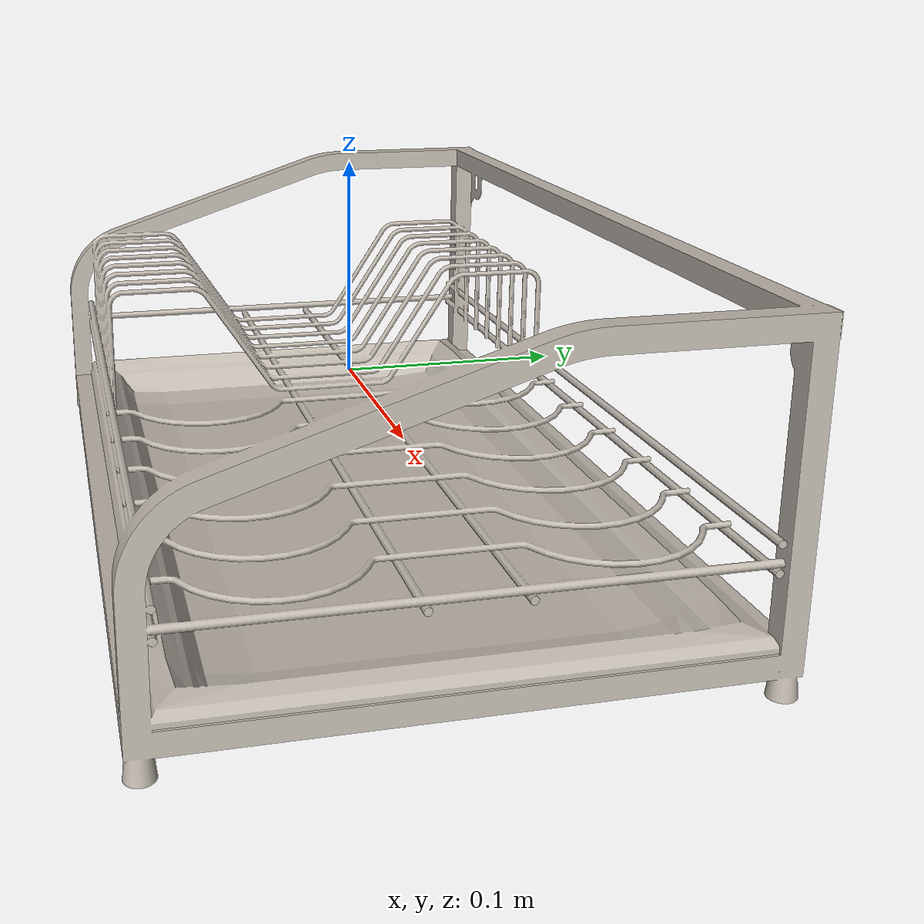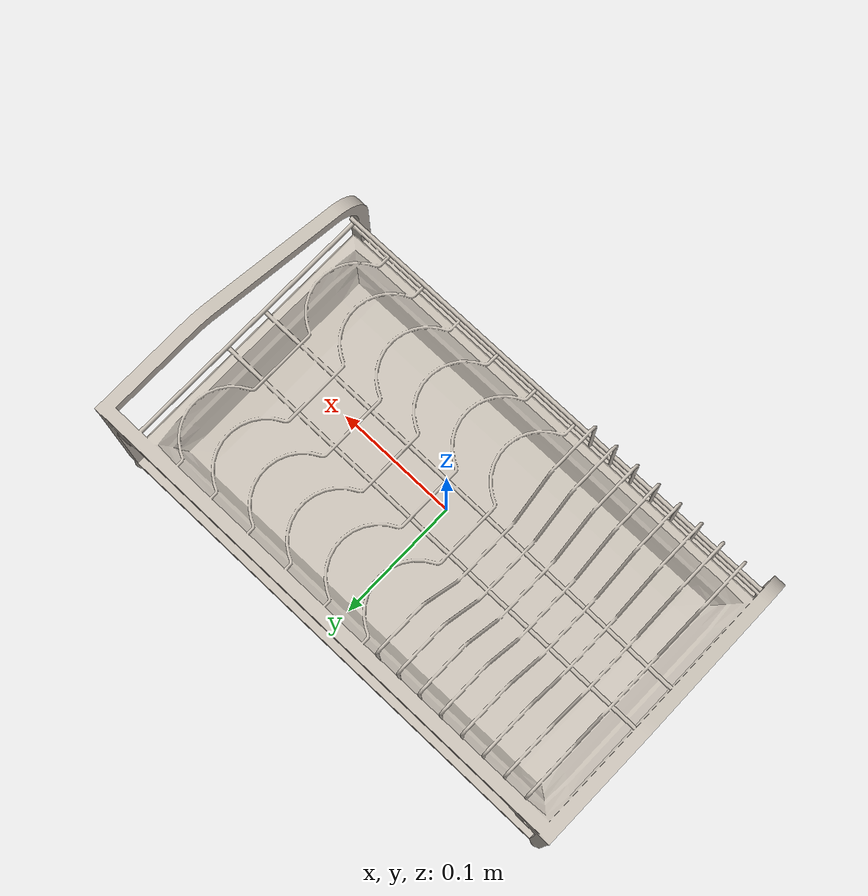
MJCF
<mujoco model="model">
  <option timestep="0.002" gravity="0.0 0.0 -9.81" />
  <compiler angle="radian" />
  <asset>
    <mesh file="visual/DishRack041.obj" name="DishRack041_vis" />
    <texture file="visual/T_BC001.png" name="DishRack041_material" type="2d" />
    <material name="DishRack041_material" rgba="1 1 1 1.0" texture="DishRack041_material" shininess="0.4472135901451111" specular="0.3103448502657381" />
  </asset>
  <default>
    <default class="visual">
      <geom conaffinity="0" contype="0" group="2" type="mesh" density="0" />
    </default>
    <default class="collision">
      <geom group="3" rgba="1 1 1 0.25" density="0" friction="1.2" />
    </default>
    <default class="spawn">
      <geom group="0" rgba="1 1 1 0.5" contype="0" conaffinity="0" />
      <site group="0" rgba="1 1 1 0.5" />
    </default>
    <default class="region">
      <geom group="1" conaffinity="0" contype="0" rgba="0 1 0 0" mass="0" />
    </default>
  </default>
  <worldbody>
    <body>
      <body name="object">
        <geom mesh="DishRack041_vis" type="mesh" class="visual" material="DishRack041_material" group="2" contype="0" conaffinity="0" density="0" mass="0.5" />
        <geom type="box" pos="-0.20499955 -0.11976144 -0.06902253" size="0.006034868769347668 0.006034720689058304 0.005978831555694342" quat="1.0 0.0 0.0 0.0" class="collision" group="3" rgba="0 0 0 0" density="0" friction="1.2" />
        <geom type="box" pos="-0.20499955 0.11968233 -0.06902253" size="0.006034869235008955 0.006034721154719591 0.005978832021355629" quat="1.0 0.0 0.0 0.0" class="collision" group="3" rgba="0 0 0 0" density="0" friction="1.2" />
        <geom type="box" pos="0.20498709 0.11968233 -0.06902253" size="0.00603487016633153 0.006034722086042166 0.005978832487016916" quat="1.0 0.0 0.0 0.0" class="collision" group="3" rgba="0 0 0 0" density="0" friction="1.2" />
        <geom type="box" pos="0.20498709 -0.11977387 -0.06902253" size="0.006034871097654104 0.006034722551703453 0.005978832487016916" quat="1.0 0.0 0.0 0.0" class="collision" group="3" rgba="0 0 0 0" density="0" friction="1.2" />
        <geom type="box" pos="-0.00061250 -0.00006126 -0.05979588" size="0.21163222193717957 0.12574626505374908 0.004442216828465462" quat="1.0 0.0 0.0 0.0" class="collision" group="3" rgba="0 0 0 0" density="0" friction="1.2" />
        <geom type="box" pos="0.20537086 -0.03480111 0.05003294" size="0.0056511941365897655 0.0711166188120842 0.030421923846006393" quat="0.9998422265052795 -0.01776234805583954 -0.0 0.0" class="collision" group="3" rgba="0 0 0 0" density="0" friction="1.2" />
        <geom type="box" pos="0.20537086 -0.11268605 0.01644948" size="0.0056511941365897655 0.012520523741841316 0.015021923929452896" quat="0.9937589168548584 -0.11154916882514954 -0.0 0.0" class="collision" group="3" rgba="0 0 0 0" density="0" friction="1.2" />
        <geom type="box" pos="0.20537086 -0.11988796 -0.02049373" size="0.00565115874633193 0.005920676048845053 0.02907174825668335" quat="1.0 0.0 0.0 0.0" class="collision" group="3" rgba="0 0 0 0" density="0" friction="1.2" />
        <geom type="box" pos="0.20371896 0.12001329 0.00672089" size="0.007303008809685707 0.005672820843756199 0.05813051015138626" quat="1.0 0.0 0.0 0.0" class="collision" group="3" rgba="0 0 0 0" density="0" friction="1.2" />
        <geom type="box" pos="0.00590863 0.11987413 0.07204802" size="0.20511117577552795 0.0058119758032262325 0.007242751773446798" quat="1.0 0.0 0.0 0.0" class="collision" group="3" rgba="0 0 0 0" density="0" friction="1.2" />
        <geom type="box" pos="0.20371896 0.07880966 0.07204802" size="0.007303010206669569 0.046876210719347 0.00724275317043066" quat="1.0 0.0 0.0 0.0" class="collision" group="3" rgba="0 0 0 0" density="0" friction="1.2" />
        <geom type="box" pos="-0.20725405 0.07880966 0.07204802" size="0.007303011137992144 0.0468762144446373 0.00724275317043066" quat="1.0 0.0 0.0 0.0" class="collision" group="3" rgba="0 0 0 0" density="0" friction="1.2" />
        <geom type="box" pos="-0.20725405 0.12001329 0.00672089" size="0.007303011603653431 0.005672822240740061 0.05813053250312805" quat="1.0 0.0 0.0 0.0" class="collision" group="3" rgba="0 0 0 0" density="0" friction="1.2" />
        <geom type="box" pos="-0.20560215 -0.11268605 0.01644948" size="0.0056511941365897655 0.012520523741841316 0.015021923929452896" quat="0.9937589168548584 -0.11154916882514954 -0.0 0.0" class="collision" group="3" rgba="0 0 0 0" density="0" friction="1.2" />
        <geom type="box" pos="-0.20560215 -0.11988796 -0.02049373" size="0.005651161074638367 0.005920678377151489 0.029071766883134842" quat="1.0 0.0 0.0 0.0" class="collision" group="3" rgba="0 0 0 0" density="0" friction="1.2" />
        <geom type="box" pos="-0.20560215 -0.03480111 0.04964730" size="0.005651161074638367 0.07111608982086182 0.030421655625104904" quat="1.0 0.0 0.0 0.0" class="collision" group="3" rgba="0 0 0 0" density="0" friction="1.2" />
        <geom type="box" pos="0.00227845 -0.11360306 -0.02329872" size="0.20874150097370148 0.0015127251390367746 0.0015663657104596496" quat="1.0 0.0 0.0 0.0" class="collision" group="3" rgba="0 0 0 0" density="0" friction="1.2" />
        <geom type="box" pos="0.00227845 -0.11360306 -0.01176763" size="0.20874153077602386 0.0015127252554520965 0.0015663658268749714" quat="1.0 0.0 0.0 0.0" class="collision" group="3" rgba="0 0 0 0" density="0" friction="1.2" />
        <geom type="box" pos="0.00227845 0.11306563 -0.01176763" size="0.20874154567718506 0.0015127254882827401 0.001566366059705615" quat="1.0 0.0 0.0 0.0" class="collision" group="3" rgba="0 0 0 0" density="0" friction="1.2" />
        <geom type="box" pos="0.00227845 0.11306563 -0.02329872" size="0.20874157547950745 0.001512725604698062 0.0015663661761209369" quat="1.0 0.0 0.0 0.0" class="collision" group="3" rgba="0 0 0 0" density="0" friction="1.2" />
        <geom type="box" pos="0.00227845 0.01854266 -0.02329872" size="0.20874159038066864 0.0015127258375287056 0.0015663664089515805" quat="1.0 0.0 0.0 0.0" class="collision" group="3" rgba="0 0 0 0" density="0" friction="1.2" />
        <geom type="box" pos="0.00227845 -0.02001187 -0.02329872" size="0.20874162018299103 0.0015127259539440274 0.0015663665253669024" quat="1.0 0.0 0.0 0.0" class="collision" group="3" rgba="0 0 0 0" density="0" friction="1.2" />
        <geom type="box" pos="0.20483638 -0.00016860 -0.01980462" size="0.002513597020879388 0.11543918401002884 0.001566366758197546" quat="1.0 0.0 0.0 0.0" class="collision" group="3" rgba="0 0 0 0" density="0" friction="1.2" />
        <geom type="box" pos="-0.20515107 -0.00016860 -0.01980462" size="0.0025135972537100315 0.11543919146060944 0.0015663668746128678" quat="1.0 0.0 0.0 0.0" class="collision" group="3" rgba="0 0 0 0" density="0" friction="1.2" />
        <geom type="box" pos="-0.02073891 0.00228115 -0.02033602" size="0.0012615813175216317 0.029907487332820892 0.0010349740041419864" quat="1.0 0.0 0.0 0.0" class="collision" group="3" rgba="0 0 0 0" density="0" friction="1.2" />
        <geom type="box" pos="-0.03891834 -0.11081605 0.00232781" size="0.0012615812011063099 0.0014540024567395449 0.026241205632686615" quat="1.0 0.0 0.0 0.0" class="collision" group="3" rgba="0 0 0 0" density="0" friction="1.2" />
        <geom type="box" pos="-0.03891834 -0.10821144 0.03224378" size="0.0012615813175216317 0.003888410050421953 0.005072547122836113" quat="1.0 0.0 0.0 0.0" class="collision" group="3" rgba="0 0 0 0" density="0" friction="1.2" />
        <geom type="box" pos="-0.03891834 -0.08481420 0.03431441" size="0.0012615814339369535 0.02004888467490673 0.0013131308369338512" quat="1.0 0.0 0.0 0.0" class="collision" group="3" rgba="0 0 0 0" density="0" friction="1.2" />
        <geom type="box" pos="-0.03891834 0.00069457 -0.02016848" size="0.0012615815503522754 0.028269343078136444 0.0016950407298281789" quat="1.0 0.0 0.0 0.0" class="collision" group="3" rgba="0 0 0 0" density="0" friction="1.2" />
        <geom type="box" pos="-0.03891834 0.10960148 0.00614335" size="0.0012615815503522754 0.001444814377464354 0.029950587078928947" quat="1.0 0.0 0.0 0.0" class="collision" group="3" rgba="0 0 0 0" density="0" friction="1.2" />
        <geom type="box" pos="-0.03891834 0.04678638 0.00746748" size="0.0012615886516869068 0.03220853954553604 0.0018466416513547301" quat="0.8832719922065735 0.468860924243927 0.0 0.0" class="collision" group="3" rgba="0 0 0 0" density="0" friction="1.2" />
        <geom type="box" pos="-0.03891834 0.08640634 0.03439917" size="0.0012615816667675972 0.022330930456519127 0.0016949691344052553" quat="1.0 0.0 0.0 0.0" class="collision" group="3" rgba="0 0 0 0" density="0" friction="1.2" />
        <geom type="box" pos="-0.05897414 0.08640634 0.03439917" size="0.001261581783182919 0.022330930456519127 0.0016949691344052553" quat="1.0 0.0 0.0 0.0" class="collision" group="3" rgba="0 0 0 0" density="0" friction="1.2" />
        <geom type="box" pos="-0.05897414 0.04678638 0.00746748" size="0.0012615886516869068 0.03220853954553604 0.0018466416513547301" quat="0.8832719922065735 0.468860924243927 0.0 0.0" class="collision" group="3" rgba="0 0 0 0" density="0" friction="1.2" />
        <geom type="box" pos="-0.05897414 0.10960148 0.00614335" size="0.0012615818995982409 0.0014448147267103195 0.029950596392154694" quat="1.0 0.0 0.0 0.0" class="collision" group="3" rgba="0 0 0 0" density="0" friction="1.2" />
        <geom type="box" pos="-0.05897414 0.00069457 -0.02016848" size="0.0012615820160135627 0.02826935611665249 0.0016950415447354317" quat="1.0 0.0 0.0 0.0" class="collision" group="3" rgba="0 0 0 0" density="0" friction="1.2" />
        <geom type="box" pos="-0.05897414 -0.08481420 0.03431441" size="0.0012615820160135627 0.020048895850777626 0.0013131314190104604" quat="1.0 0.0 0.0 0.0" class="collision" group="3" rgba="0 0 0 0" density="0" friction="1.2" />
        <geom type="box" pos="-0.05897414 -0.10821144 0.03224378" size="0.0012615821324288845 0.003888412844389677 0.005072550382465124" quat="1.0 0.0 0.0 0.0" class="collision" group="3" rgba="0 0 0 0" density="0" friction="1.2" />
        <geom type="box" pos="-0.05897414 -0.11081605 0.00232781" size="0.0012615822488442063 0.0014540036208927631 0.026241237297654152" quat="1.0 0.0 0.0 0.0" class="collision" group="3" rgba="0 0 0 0" density="0" friction="1.2" />
        <geom type="box" pos="-0.07884455 -0.11081605 0.00232781" size="0.0012615823652595282 0.0014540036208927631 0.0262412391602993" quat="1.0 0.0 0.0 0.0" class="collision" group="3" rgba="0 0 0 0" density="0" friction="1.2" />
        <geom type="box" pos="-0.07884455 -0.10821144 0.03224378" size="0.0012615823652595282 0.003888414241373539 0.005072551313787699" quat="1.0 0.0 0.0 0.0" class="collision" group="3" rgba="0 0 0 0" density="0" friction="1.2" />
        <geom type="box" pos="-0.07884455 -0.08481420 0.03431441" size="0.00126158248167485 0.020048901438713074 0.0013131318846717477" quat="1.0 0.0 0.0 0.0" class="collision" group="3" rgba="0 0 0 0" density="0" friction="1.2" />
        <geom type="box" pos="-0.07884455 0.00069457 -0.02016848" size="0.0012615825980901718 0.02826937846839428 0.0016950428253039718" quat="1.0 0.0 0.0 0.0" class="collision" group="3" rgba="0 0 0 0" density="0" friction="1.2" />
        <geom type="box" pos="-0.07884455 0.10960148 0.00614335" size="0.0012615827145054936 0.0014448155416175723 0.029950622469186783" quat="1.0 0.0 0.0 0.0" class="collision" group="3" rgba="0 0 0 0" density="0" friction="1.2" />
        <geom type="box" pos="-0.07884455 0.04678638 0.00746748" size="0.0012615886516869068 0.03220853954553604 0.0018466416513547301" quat="0.8832719922065735 0.468860924243927 0.0 0.0" class="collision" group="3" rgba="0 0 0 0" density="0" friction="1.2" />
        <geom type="box" pos="-0.07884455 0.08640634 0.03439917" size="0.0012615827145054936 0.02233094722032547 0.0016949712298810482" quat="1.0 0.0 0.0 0.0" class="collision" group="3" rgba="0 0 0 0" density="0" friction="1.2" />
        <geom type="box" pos="-0.09878767 0.08640634 0.03439917" size="0.0012615828309208155 0.02233094722032547 0.0016949712298810482" quat="1.0 0.0 0.0 0.0" class="collision" group="3" rgba="0 0 0 0" density="0" friction="1.2" />
        <geom type="box" pos="-0.09878767 0.04678638 0.00746748" size="0.0012615886516869068 0.03220853954553604 0.0018466416513547301" quat="0.8832719922065735 0.468860924243927 0.0 0.0" class="collision" group="3" rgba="0 0 0 0" density="0" friction="1.2" />
        <geom type="box" pos="-0.09878767 0.10960148 0.00614335" size="0.0012615829473361373 0.001444815774448216 0.02995062991976738" quat="1.0 0.0 0.0 0.0" class="collision" group="3" rgba="0 0 0 0" density="0" friction="1.2" />
        <geom type="box" pos="-0.09878767 0.00069457 -0.02016848" size="0.0012615830637514591 0.028269389644265175 0.0016950437566265464" quat="1.0 0.0 0.0 0.0" class="collision" group="3" rgba="0 0 0 0" density="0" friction="1.2" />
        <geom type="box" pos="-0.09878767 -0.08481420 0.03431441" size="0.0012615830637514591 0.02004891261458397 0.0013131325831636786" quat="1.0 0.0 0.0 0.0" class="collision" group="3" rgba="0 0 0 0" density="0" friction="1.2" />
        <geom type="box" pos="-0.09878767 -0.10821144 0.03224378" size="0.001261583180166781 0.003888417035341263 0.00507255457341671" quat="1.0 0.0 0.0 0.0" class="collision" group="3" rgba="0 0 0 0" density="0" friction="1.2" />
        <geom type="box" pos="-0.09878767 -0.11081605 0.00232781" size="0.0012615832965821028 0.0014540046686306596 0.026241270825266838" quat="1.0 0.0 0.0 0.0" class="collision" group="3" rgba="0 0 0 0" density="0" friction="1.2" />
        <geom type="box" pos="-0.11914092 -0.11081605 0.00232781" size="0.0012615834129974246 0.0014540046686306596 0.026241272687911987" quat="1.0 0.0 0.0 0.0" class="collision" group="3" rgba="0 0 0 0" density="0" friction="1.2" />
        <geom type="box" pos="-0.11914092 -0.10821144 0.03224378" size="0.0012615835294127464 0.0038884186651557684 0.0050725555047392845" quat="1.0 0.0 0.0 0.0" class="collision" group="3" rgba="0 0 0 0" density="0" friction="1.2" />
        <geom type="box" pos="-0.11914092 -0.08481420 0.03431441" size="0.0012615835294127464 0.020048920065164566 0.0013131329324096441" quat="1.0 0.0 0.0 0.0" class="collision" group="3" rgba="0 0 0 0" density="0" friction="1.2" />
        <geom type="box" pos="-0.11914092 0.00069457 -0.02016848" size="0.0012615836458280683 0.028269411996006966 0.0016950450371950865" quat="1.0 0.0 0.0 0.0" class="collision" group="3" rgba="0 0 0 0" density="0" friction="1.2" />
        <geom type="box" pos="-0.11914092 0.10960148 0.00614335" size="0.00126158376224339 0.0014448165893554688 0.02995065599679947" quat="1.0 0.0 0.0 0.0" class="collision" group="3" rgba="0 0 0 0" density="0" friction="1.2" />
        <geom type="box" pos="-0.11914092 0.04678638 0.00746748" size="0.0012615886516869068 0.03220853954553604 0.0018466416513547301" quat="0.8832719922065735 0.468860924243927 0.0 0.0" class="collision" group="3" rgba="0 0 0 0" density="0" friction="1.2" />
        <geom type="box" pos="-0.11914092 0.08640634 0.03439917" size="0.001261583878658712 0.022330963984131813 0.001694973325356841" quat="1.0 0.0 0.0 0.0" class="collision" group="3" rgba="0 0 0 0" density="0" friction="1.2" />
        <geom type="box" pos="-0.13966642 0.08640634 0.03439917" size="0.001261583878658712 0.022330963984131813 0.001694973325356841" quat="1.0 0.0 0.0 0.0" class="collision" group="3" rgba="0 0 0 0" density="0" friction="1.2" />
        <geom type="box" pos="-0.13966642 0.04678638 0.00746748" size="0.0012615886516869068 0.03220853954553604 0.0018466416513547301" quat="0.8832719922065735 0.468860924243927 0.0 0.0" class="collision" group="3" rgba="0 0 0 0" density="0" friction="1.2" />
        <geom type="box" pos="-0.13966642 0.10960148 0.00614335" size="0.0012615839950740337 0.0014448168221861124 0.029950665310025215" quat="1.0 0.0 0.0 0.0" class="collision" group="3" rgba="0 0 0 0" density="0" friction="1.2" />
        <geom type="box" pos="-0.13966642 0.00069457 -0.02016848" size="0.0012615841114893556 0.02826942317187786 0.0016950458521023393" quat="1.0 0.0 0.0 0.0" class="collision" group="3" rgba="0 0 0 0" density="0" friction="1.2" />
        <geom type="box" pos="-0.13929930 -0.08481420 0.03431441" size="0.0020217648707330227 0.020048929378390312 0.0015507052885368466" quat="1.0 0.0 0.0 0.0" class="collision" group="3" rgba="0 0 0 0" density="0" friction="1.2" />
        <geom type="box" pos="-0.13966642 -0.10821144 0.03224378" size="0.0012615842279046774 0.0038884214591234922 0.005072558764368296" quat="1.0 0.0 0.0 0.0" class="collision" group="3" rgba="0 0 0 0" density="0" friction="1.2" />
        <geom type="box" pos="-0.13920130 -0.11081605 0.00232781" size="0.0015401322161778808 0.0014540100237354636 0.026241442188620567" quat="1.0 0.0 0.0 0.0" class="collision" group="3" rgba="0 0 0 0" density="0" friction="1.2" />
        <geom type="box" pos="-0.15891659 -0.11081605 0.00232781" size="0.001261584460735321 0.001454005716368556 0.026241308078169823" quat="1.0 0.0 0.0 0.0" class="collision" group="3" rgba="0 0 0 0" density="0" friction="1.2" />
        <geom type="box" pos="-0.15891659 -0.10821144 0.03224378" size="0.0012615845771506429 0.003888422856107354 0.00507255969569087" quat="1.0 0.0 0.0 0.0" class="collision" group="3" rgba="0 0 0 0" density="0" friction="1.2" />
        <geom type="box" pos="-0.15891659 -0.08481420 0.03431441" size="0.0012615846935659647 0.02004893682897091 0.0013131340965628624" quat="1.0 0.0 0.0 0.0" class="collision" group="3" rgba="0 0 0 0" density="0" friction="1.2" />
        <geom type="box" pos="-0.15891659 0.00069457 -0.02016848" size="0.0012615846935659647 0.0282694473862648 0.0016950471326708794" quat="1.0 0.0 0.0 0.0" class="collision" group="3" rgba="0 0 0 0" density="0" friction="1.2" />
        <geom type="box" pos="-0.15891659 0.10960148 0.00614335" size="0.0012615848099812865 0.0014448176370933652 0.029950689524412155" quat="1.0 0.0 0.0 0.0" class="collision" group="3" rgba="0 0 0 0" density="0" friction="1.2" />
        <geom type="box" pos="-0.15891659 0.04678638 0.00746748" size="0.0012615886516869068 0.03220853954553604 0.0018466416513547301" quat="0.8832719922065735 0.468860924243927 0.0 0.0" class="collision" group="3" rgba="0 0 0 0" density="0" friction="1.2" />
        <geom type="box" pos="-0.15891659 0.08640634 0.03439917" size="0.0012615849263966084 0.022330982610583305 0.0016949755372479558" quat="1.0 0.0 0.0 0.0" class="collision" group="3" rgba="0 0 0 0" density="0" friction="1.2" />
        <geom type="box" pos="-0.17906566 0.08640634 0.03439917" size="0.0012615850428119302 0.022330982610583305 0.0016949755372479558" quat="1.0 0.0 0.0 0.0" class="collision" group="3" rgba="0 0 0 0" density="0" friction="1.2" />
        <geom type="box" pos="-0.17906566 0.04678638 0.00746748" size="0.0012615886516869068 0.03220853954553604 0.0018466416513547301" quat="0.8832719922065735 0.468860924243927 0.0 0.0" class="collision" group="3" rgba="0 0 0 0" density="0" friction="1.2" />
        <geom type="box" pos="-0.17906566 0.10960148 0.00614335" size="0.0012615850428119302 0.0014448178699240088 0.0299506988376379" quat="1.0 0.0 0.0 0.0" class="collision" group="3" rgba="0 0 0 0" density="0" friction="1.2" />
        <geom type="box" pos="-0.17906566 0.00069457 -0.02016848" size="0.001261585159227252 0.028269458562135696 0.001695048063993454" quat="1.0 0.0 0.0 0.0" class="collision" group="3" rgba="0 0 0 0" density="0" friction="1.2" />
        <geom type="box" pos="-0.17906566 -0.08481420 0.03431441" size="0.0012615852756425738 0.020048946142196655 0.0013131346786394715" quat="1.0 0.0 0.0 0.0" class="collision" group="3" rgba="0 0 0 0" density="0" friction="1.2" />
        <geom type="box" pos="-0.17906566 -0.10821144 0.03224378" size="0.0012615853920578957 0.003888425650075078 0.0050725629553198814" quat="1.0 0.0 0.0 0.0" class="collision" group="3" rgba="0 0 0 0" density="0" friction="1.2" />
        <geom type="box" pos="-0.17906566 -0.11081605 0.00232781" size="0.0012615853920578957 0.0014540067641064525 0.02624133974313736" quat="1.0 0.0 0.0 0.0" class="collision" group="3" rgba="0 0 0 0" density="0" friction="1.2" />
        <geom type="box" pos="-0.18805820 0.12436122 0.05383100" size="0.01203637570142746 0.001444816356524825 0.013210675679147243" quat="1.0 0.0 0.0 0.0" class="collision" group="3" rgba="0 0 0 0" density="0" friction="1.2" />
        <geom type="box" pos="0.18571559 0.12436122 0.05383100" size="0.012036377564072609 0.001444816356524825 0.013210676610469818" quat="1.0 0.0 0.0 0.0" class="collision" group="3" rgba="0 0 0 0" density="0" friction="1.2" />
        <geom type="box" pos="0.01805753 0.00228115 -0.02033602" size="0.001261585857719183 0.029907632619142532 0.0010349785443395376" quat="1.0 0.0 0.0 0.0" class="collision" group="3" rgba="0 0 0 0" density="0" friction="1.2" />
        <geom type="box" pos="0.05662841 0.00228115 -0.02033602" size="0.0012615859741345048 0.02990763448178768 0.0010349786607548594" quat="1.0 0.0 0.0 0.0" class="collision" group="3" rgba="0 0 0 0" density="0" friction="1.2" />
        <geom type="box" pos="0.09489894 0.00228115 -0.02033602" size="0.0012615860905498266 0.02990763820707798 0.0010349787771701813" quat="1.0 0.0 0.0 0.0" class="collision" group="3" rgba="0 0 0 0" density="0" friction="1.2" />
        <geom type="box" pos="0.13268788 0.00228115 -0.02033602" size="0.0012615862069651484 0.02990764193236828 0.0010349787771701813" quat="1.0 0.0 0.0 0.0" class="collision" group="3" rgba="0 0 0 0" density="0" friction="1.2" />
        <geom type="box" pos="0.16748273 0.00228115 -0.02033602" size="0.0012615862069651484 0.029907643795013428 0.001034978893585503" quat="1.0 0.0 0.0 0.0" class="collision" group="3" rgba="0 0 0 0" density="0" friction="1.2" />
        <geom type="box" pos="0.19888650 -0.00006126 -0.05120076" size="0.009982718154788017 0.12574708461761475 0.004442242905497551" quat="1.0 0.0 0.0 0.0" class="collision" group="3" rgba="0 0 0 0" density="0" friction="1.2" />
        <geom type="box" pos="-0.19941530 -0.00006126 -0.05120076" size="0.009982718154788017 0.12574709951877594 0.004442243371158838" quat="1.0 0.0 0.0 0.0" class="collision" group="3" rgba="0 0 0 0" density="0" friction="1.2" />
        <geom type="box" pos="0.00057763 -0.11186486 -0.05120076" size="0.20226937532424927 0.013433815911412239 0.004442253150045872" quat="1.0 0.0 0.0 0.0" class="collision" group="3" rgba="0 0 0 0" density="0" friction="1.2" />
        <geom type="box" pos="0.00057763 0.10864222 -0.05120076" size="0.20226937532424927 0.013433815911412239 0.004442253150045872" quat="1.0 0.0 0.0 0.0" class="collision" group="3" rgba="0 0 0 0" density="0" friction="1.2" />
        <geom type="box" pos="-0.03891834 -0.04750177 0.00746748" size="0.0014921032125130296 0.03220853954553604 0.0018466416513547301" quat="6.668518182095795e-08 3.5398013409349005e-08 -0.468860924243927 -0.8832719922065735" class="collision" group="3" rgba="0 0 0 0" density="0" friction="1.2" />
        <geom type="box" pos="-0.05932090 -0.04750177 0.00746748" size="0.0014921032125130296 0.03220853954553604 0.0018466416513547301" quat="6.668518182095795e-08 3.5398013409349005e-08 -0.468860924243927 -0.8832719922065735" class="collision" group="3" rgba="0 0 0 0" density="0" friction="1.2" />
        <geom type="box" pos="-0.07883081 -0.04750177 0.00746748" size="0.0014921032125130296 0.03220853954553604 0.0018466416513547301" quat="6.668518182095795e-08 3.5398013409349005e-08 -0.468860924243927 -0.8832719922065735" class="collision" group="3" rgba="0 0 0 0" density="0" friction="1.2" />
        <geom type="box" pos="-0.09920465 -0.04750177 0.00746748" size="0.0014921032125130296 0.03220853954553604 0.0018466416513547301" quat="6.668518182095795e-08 3.5398013409349005e-08 -0.468860924243927 -0.8832719922065735" class="collision" group="3" rgba="0 0 0 0" density="0" friction="1.2" />
        <geom type="box" pos="-0.11884832 -0.04750177 0.00746748" size="0.0014921032125130296 0.03220853954553604 0.0018466416513547301" quat="6.668518182095795e-08 3.5398013409349005e-08 -0.468860924243927 -0.8832719922065735" class="collision" group="3" rgba="0 0 0 0" density="0" friction="1.2" />
        <geom type="box" pos="-0.13938928 -0.04750177 0.00746748" size="0.0014921032125130296 0.03220853954553604 0.0018466416513547301" quat="6.668518182095795e-08 3.5398013409349005e-08 -0.468860924243927 -0.8832719922065735" class="collision" group="3" rgba="0 0 0 0" density="0" friction="1.2" />
        <geom type="box" pos="-0.15863523 -0.04750177 0.00746748" size="0.0014921032125130296 0.03220853954553604 0.0018466416513547301" quat="6.668518182095795e-08 3.5398013409349005e-08 -0.468860924243927 -0.8832719922065735" class="collision" group="3" rgba="0 0 0 0" density="0" friction="1.2" />
        <geom type="box" pos="-0.17877235 -0.04750177 0.00746748" size="0.0014921032125130296 0.03220853954553604 0.0018466416513547301" quat="6.668518182095795e-08 3.5398013409349005e-08 -0.468860924243927 -0.8832719922065735" class="collision" group="3" rgba="0 0 0 0" density="0" friction="1.2" />
        <geom type="box" pos="-0.01366808 -0.03397605 -0.01999718" size="0.0012615887681022286 0.006920578423887491 0.0010349814547225833" quat="0.8809190988540649 0.0 0.0 0.47326692938804626" class="collision" group="3" rgba="0 0 0 0" density="0" friction="1.2" />
        <geom type="box" pos="-0.00366493 -0.04256967 -0.02018545" size="0.0012615887681022286 0.006920579355210066 0.0010349814547225833" quat="0.9366821646690369 0.0 0.0 0.3501807451248169" class="collision" group="3" rgba="0 0 0 0" density="0" friction="1.2" />
        <geom type="box" pos="0.00249082 -0.05419178 -0.02018545" size="0.0012615888845175505 0.006920578423887491 0.0010349814547225833" quat="0.9872344732284546 0.0 0.0 0.15927375853061676" class="collision" group="3" rgba="0 0 0 0" density="0" friction="1.2" />
        <geom type="box" pos="0.00442649 -0.06726661 -0.02018545" size="0.0015448019839823246 0.006966559682041407 0.0010349814547225833" quat="1.0 0.0 0.0 0.0" class="collision" group="3" rgba="0 0 0 0" density="0" friction="1.2" />
        <geom type="box" pos="0.00188024 -0.07985152 -0.02018545" size="0.0012615887681022286 0.006920578423887491 0.0010349814547225833" quat="0.9868403673171997 0.0 -0.0 -0.16169767081737518" class="collision" group="3" rgba="0 0 0 0" density="0" friction="1.2" />
        <geom type="box" pos="-0.00507362 -0.09099808 -0.02018545" size="0.0012615887681022286 0.006920578423887491 0.0010349814547225833" quat="0.9477697014808655 0.0 -0.0 -0.31895554065704346" class="collision" group="3" rgba="0 0 0 0" density="0" friction="1.2" />
        <geom type="box" pos="-0.01516932 -0.09969484 -0.02018545" size="0.0012615887681022286 0.006920579355210066 0.0010349814547225833" quat="0.8807778358459473 0.0 -0.0 -0.47352972626686096" class="collision" group="3" rgba="0 0 0 0" density="0" friction="1.2" />
        <geom type="box" pos="-0.02038697 -0.10879981 -0.02018545" size="0.0013045015512034297 0.006928272545337677 0.0010349814547225833" quat="1.0 0.0 0.0 0.0" class="collision" group="3" rgba="0 0 0 0" density="0" friction="1.2" />
        <geom type="box" pos="0.02502925 -0.03397605 -0.01999718" size="0.0012615887681022286 0.006920578423887491 0.0010349814547225833" quat="0.8809190988540649 0.0 0.0 0.47326692938804626" class="collision" group="3" rgba="0 0 0 0" density="0" friction="1.2" />
        <geom type="box" pos="0.03503239 -0.04256967 -0.02018545" size="0.0012615887681022286 0.006920579355210066 0.0010349814547225833" quat="0.9366821646690369 0.0 0.0 0.3501807451248169" class="collision" group="3" rgba="0 0 0 0" density="0" friction="1.2" />
        <geom type="box" pos="0.04118814 -0.05419178 -0.02018545" size="0.0012615888845175505 0.006920578423887491 0.0010349814547225833" quat="0.9872344732284546 0.0 0.0 0.15927375853061676" class="collision" group="3" rgba="0 0 0 0" density="0" friction="1.2" />
        <geom type="box" pos="0.04312382 -0.06726661 -0.02018545" size="0.0015448019839823246 0.006966559682041407 0.0010349814547225833" quat="1.0 0.0 0.0 0.0" class="collision" group="3" rgba="0 0 0 0" density="0" friction="1.2" />
        <geom type="box" pos="0.04057756 -0.07985152 -0.02018545" size="0.0012615887681022286 0.006920578423887491 0.0010349814547225833" quat="0.9868403673171997 0.0 -0.0 -0.16169767081737518" class="collision" group="3" rgba="0 0 0 0" density="0" friction="1.2" />
        <geom type="box" pos="0.03362370 -0.09099808 -0.02018545" size="0.0012615887681022286 0.006920578423887491 0.0010349814547225833" quat="0.9477697014808655 0.0 -0.0 -0.31895554065704346" class="collision" group="3" rgba="0 0 0 0" density="0" friction="1.2" />
        <geom type="box" pos="0.02352800 -0.09969484 -0.02018545" size="0.0012615887681022286 0.006920579355210066 0.0010349814547225833" quat="0.8807778358459473 0.0 -0.0 -0.47352972626686096" class="collision" group="3" rgba="0 0 0 0" density="0" friction="1.2" />
        <geom type="box" pos="0.01831035 -0.10879981 -0.02018545" size="0.0013045015512034297 0.006928272545337677 0.0010349814547225833" quat="1.0 0.0 0.0 0.0" class="collision" group="3" rgba="0 0 0 0" density="0" friction="1.2" />
        <geom type="box" pos="0.06387548 -0.03397605 -0.01999718" size="0.0012615887681022286 0.006920578423887491 0.0010349814547225833" quat="0.8809190988540649 0.0 0.0 0.47326692938804626" class="collision" group="3" rgba="0 0 0 0" density="0" friction="1.2" />
        <geom type="box" pos="0.07387862 -0.04256967 -0.02018545" size="0.0012615887681022286 0.006920579355210066 0.0010349814547225833" quat="0.9366821646690369 0.0 0.0 0.3501807451248169" class="collision" group="3" rgba="0 0 0 0" density="0" friction="1.2" />
        <geom type="box" pos="0.08003438 -0.05419178 -0.02018545" size="0.0012615888845175505 0.006920578423887491 0.0010349814547225833" quat="0.9872344732284546 0.0 0.0 0.15927375853061676" class="collision" group="3" rgba="0 0 0 0" density="0" friction="1.2" />
        <geom type="box" pos="0.08197005 -0.06726661 -0.02018545" size="0.0015448019839823246 0.006966559682041407 0.0010349814547225833" quat="1.0 0.0 0.0 0.0" class="collision" group="3" rgba="0 0 0 0" density="0" friction="1.2" />
        <geom type="box" pos="0.07942379 -0.07985152 -0.02018545" size="0.0012615887681022286 0.006920578423887491 0.0010349814547225833" quat="0.9868403673171997 0.0 -0.0 -0.16169767081737518" class="collision" group="3" rgba="0 0 0 0" density="0" friction="1.2" />
        <geom type="box" pos="0.07246993 -0.09099808 -0.02018545" size="0.0012615887681022286 0.006920578423887491 0.0010349814547225833" quat="0.9477697014808655 0.0 -0.0 -0.31895554065704346" class="collision" group="3" rgba="0 0 0 0" density="0" friction="1.2" />
        <geom type="box" pos="0.06237423 -0.09969484 -0.02018545" size="0.0012615887681022286 0.006920579355210066 0.0010349814547225833" quat="0.8807778358459473 0.0 -0.0 -0.47352972626686096" class="collision" group="3" rgba="0 0 0 0" density="0" friction="1.2" />
        <geom type="box" pos="0.05715659 -0.10879981 -0.02018545" size="0.0013045015512034297 0.006928272545337677 0.0010349814547225833" quat="1.0 0.0 0.0 0.0" class="collision" group="3" rgba="0 0 0 0" density="0" friction="1.2" />
        <geom type="box" pos="0.10242925 -0.03397605 -0.01999718" size="0.0012615887681022286 0.006920578423887491 0.0010349814547225833" quat="0.8809190988540649 0.0 0.0 0.47326692938804626" class="collision" group="3" rgba="0 0 0 0" density="0" friction="1.2" />
        <geom type="box" pos="0.11243239 -0.04256967 -0.02018545" size="0.0012615887681022286 0.006920579355210066 0.0010349814547225833" quat="0.9366821646690369 0.0 0.0 0.3501807451248169" class="collision" group="3" rgba="0 0 0 0" density="0" friction="1.2" />
        <geom type="box" pos="0.11858814 -0.05419178 -0.02018545" size="0.0012615888845175505 0.006920578423887491 0.0010349814547225833" quat="0.9872344732284546 0.0 0.0 0.15927375853061676" class="collision" group="3" rgba="0 0 0 0" density="0" friction="1.2" />
        <geom type="box" pos="0.12052382 -0.06726661 -0.02018545" size="0.0015448019839823246 0.006966559682041407 0.0010349814547225833" quat="1.0 0.0 0.0 0.0" class="collision" group="3" rgba="0 0 0 0" density="0" friction="1.2" />
        <geom type="box" pos="0.11797756 -0.07985152 -0.02018545" size="0.0012615887681022286 0.006920578423887491 0.0010349814547225833" quat="0.9868403673171997 0.0 -0.0 -0.16169767081737518" class="collision" group="3" rgba="0 0 0 0" density="0" friction="1.2" />
        <geom type="box" pos="0.11102370 -0.09099808 -0.02018545" size="0.0012615887681022286 0.006920578423887491 0.0010349814547225833" quat="0.9477697014808655 0.0 -0.0 -0.31895554065704346" class="collision" group="3" rgba="0 0 0 0" density="0" friction="1.2" />
        <geom type="box" pos="0.10092800 -0.09969484 -0.02018545" size="0.0012615887681022286 0.006920579355210066 0.0010349814547225833" quat="0.8807778358459473 0.0 -0.0 -0.47352972626686096" class="collision" group="3" rgba="0 0 0 0" density="0" friction="1.2" />
        <geom type="box" pos="0.09571035 -0.10879981 -0.02018545" size="0.0013045015512034297 0.006928272545337677 0.0010349814547225833" quat="1.0 0.0 0.0 0.0" class="collision" group="3" rgba="0 0 0 0" density="0" friction="1.2" />
        <geom type="box" pos="0.13934830 -0.03397605 -0.01999718" size="0.0012615887681022286 0.006920578423887491 0.0010349814547225833" quat="0.8809190988540649 0.0 0.0 0.47326692938804626" class="collision" group="3" rgba="0 0 0 0" density="0" friction="1.2" />
        <geom type="box" pos="0.14935145 -0.04256967 -0.02018545" size="0.0012615887681022286 0.006920579355210066 0.0010349814547225833" quat="0.9366821646690369 0.0 0.0 0.3501807451248169" class="collision" group="3" rgba="0 0 0 0" density="0" friction="1.2" />
        <geom type="box" pos="0.15550719 -0.05419178 -0.02018545" size="0.0012615888845175505 0.006920578423887491 0.0010349814547225833" quat="0.9872344732284546 0.0 0.0 0.15927375853061676" class="collision" group="3" rgba="0 0 0 0" density="0" friction="1.2" />
        <geom type="box" pos="0.15744287 -0.06726661 -0.02018545" size="0.0015448019839823246 0.006966559682041407 0.0010349814547225833" quat="1.0 0.0 0.0 0.0" class="collision" group="3" rgba="0 0 0 0" density="0" friction="1.2" />
        <geom type="box" pos="0.15489662 -0.07985152 -0.02018545" size="0.0012615887681022286 0.006920578423887491 0.0010349814547225833" quat="0.9868403673171997 0.0 -0.0 -0.16169767081737518" class="collision" group="3" rgba="0 0 0 0" density="0" friction="1.2" />
        <geom type="box" pos="0.14794275 -0.09099808 -0.02018545" size="0.0012615887681022286 0.006920578423887491 0.0010349814547225833" quat="0.9477697014808655 0.0 -0.0 -0.31895554065704346" class="collision" group="3" rgba="0 0 0 0" density="0" friction="1.2" />
        <geom type="box" pos="0.13784705 -0.09969484 -0.02018545" size="0.0012615887681022286 0.006920579355210066 0.0010349814547225833" quat="0.8807778358459473 0.0 -0.0 -0.47352972626686096" class="collision" group="3" rgba="0 0 0 0" density="0" friction="1.2" />
        <geom type="box" pos="0.13262941 -0.10879981 -0.02018545" size="0.0013045015512034297 0.006928272545337677 0.0010349814547225833" quat="1.0 0.0 0.0 0.0" class="collision" group="3" rgba="0 0 0 0" density="0" friction="1.2" />
        <geom type="box" pos="0.17448863 -0.03397605 -0.01999718" size="0.0012615887681022286 0.006920578423887491 0.0010349814547225833" quat="0.8809190988540649 0.0 0.0 0.47326692938804626" class="collision" group="3" rgba="0 0 0 0" density="0" friction="1.2" />
        <geom type="box" pos="0.18449178 -0.04256967 -0.02018545" size="0.0012615887681022286 0.006920579355210066 0.0010349814547225833" quat="0.9366821646690369 0.0 0.0 0.3501807451248169" class="collision" group="3" rgba="0 0 0 0" density="0" friction="1.2" />
        <geom type="box" pos="0.19064753 -0.05419178 -0.02018545" size="0.0012615888845175505 0.006920578423887491 0.0010349814547225833" quat="0.9872344732284546 0.0 0.0 0.15927375853061676" class="collision" group="3" rgba="0 0 0 0" density="0" friction="1.2" />
        <geom type="box" pos="0.19258320 -0.06726661 -0.02018545" size="0.0015448019839823246 0.006966559682041407 0.0010349814547225833" quat="1.0 0.0 0.0 0.0" class="collision" group="3" rgba="0 0 0 0" density="0" friction="1.2" />
        <geom type="box" pos="0.19003695 -0.07985152 -0.02018545" size="0.0012615887681022286 0.006920578423887491 0.0010349814547225833" quat="0.9868403673171997 0.0 -0.0 -0.16169767081737518" class="collision" group="3" rgba="0 0 0 0" density="0" friction="1.2" />
        <geom type="box" pos="0.18308309 -0.09099808 -0.02018545" size="0.0012615887681022286 0.006920578423887491 0.0010349814547225833" quat="0.9477697014808655 0.0 -0.0 -0.31895554065704346" class="collision" group="3" rgba="0 0 0 0" density="0" friction="1.2" />
        <geom type="box" pos="0.17298739 -0.09969484 -0.02018545" size="0.0012615887681022286 0.006920579355210066 0.0010349814547225833" quat="0.8807778358459473 0.0 -0.0 -0.47352972626686096" class="collision" group="3" rgba="0 0 0 0" density="0" friction="1.2" />
        <geom type="box" pos="0.16776974 -0.10879981 -0.02018545" size="0.0013045015512034297 0.006928272545337677 0.0010349814547225833" quat="1.0 0.0 0.0 0.0" class="collision" group="3" rgba="0 0 0 0" density="0" friction="1.2" />
        <geom type="box" pos="0.17448863 0.09753564 -0.01999718" size="0.0012615887681022286 0.006920578423887491 0.0010349814547225833" quat="0.8809190988540649 0.0 0.0 0.47326692938804626" class="collision" group="3" rgba="0 0 0 0" density="0" friction="1.2" />
        <geom type="box" pos="0.18449178 0.08894201 -0.02018545" size="0.0012615887681022286 0.006920579355210066 0.0010349814547225833" quat="0.9366821646690369 0.0 0.0 0.3501807451248169" class="collision" group="3" rgba="0 0 0 0" density="0" friction="1.2" />
        <geom type="box" pos="0.19064753 0.07731991 -0.02018545" size="0.0012615888845175505 0.006920578423887491 0.0010349814547225833" quat="0.9872344732284546 0.0 0.0 0.15927375853061676" class="collision" group="3" rgba="0 0 0 0" density="0" friction="1.2" />
        <geom type="box" pos="0.19258320 0.06424508 -0.02018545" size="0.0015448019839823246 0.006966559682041407 0.0010349814547225833" quat="1.0 0.0 0.0 0.0" class="collision" group="3" rgba="0 0 0 0" density="0" friction="1.2" />
        <geom type="box" pos="0.19003695 0.05166017 -0.02018545" size="0.0012615887681022286 0.006920578423887491 0.0010349814547225833" quat="0.9868403673171997 0.0 -0.0 -0.16169767081737518" class="collision" group="3" rgba="0 0 0 0" density="0" friction="1.2" />
        <geom type="box" pos="0.18308309 0.04051361 -0.02018545" size="0.0012615887681022286 0.006920578423887491 0.0010349814547225833" quat="0.9477697014808655 0.0 -0.0 -0.31895554065704346" class="collision" group="3" rgba="0 0 0 0" density="0" friction="1.2" />
        <geom type="box" pos="0.17298739 0.03181685 -0.02018545" size="0.0012615887681022286 0.006920579355210066 0.0010349814547225833" quat="0.8807778358459473 0.0 -0.0 -0.47352972626686096" class="collision" group="3" rgba="0 0 0 0" density="0" friction="1.2" />
        <geom type="box" pos="0.16776974 0.10798398 -0.02018545" size="0.0013045015512034297 0.006928272545337677 0.0010349814547225833" quat="1.0 0.0 0.0 0.0" class="collision" group="3" rgba="0 0 0 0" density="0" friction="1.2" />
        <geom type="box" pos="0.13951841 0.09753564 -0.01999718" size="0.0012615887681022286 0.006920578423887491 0.0010349814547225833" quat="0.8809190988540649 0.0 0.0 0.47326692938804626" class="collision" group="3" rgba="0 0 0 0" density="0" friction="1.2" />
        <geom type="box" pos="0.14952156 0.08894201 -0.02018545" size="0.0012615887681022286 0.006920579355210066 0.0010349814547225833" quat="0.9366821646690369 0.0 0.0 0.3501807451248169" class="collision" group="3" rgba="0 0 0 0" density="0" friction="1.2" />
        <geom type="box" pos="0.15567730 0.07731991 -0.02018545" size="0.0012615888845175505 0.006920578423887491 0.0010349814547225833" quat="0.9872344732284546 0.0 0.0 0.15927375853061676" class="collision" group="3" rgba="0 0 0 0" density="0" friction="1.2" />
        <geom type="box" pos="0.15761298 0.06424508 -0.02018545" size="0.0015448019839823246 0.006966559682041407 0.0010349814547225833" quat="1.0 0.0 0.0 0.0" class="collision" group="3" rgba="0 0 0 0" density="0" friction="1.2" />
        <geom type="box" pos="0.15506673 0.05166017 -0.02018545" size="0.0012615887681022286 0.006920578423887491 0.0010349814547225833" quat="0.9868403673171997 0.0 -0.0 -0.16169767081737518" class="collision" group="3" rgba="0 0 0 0" density="0" friction="1.2" />
        <geom type="box" pos="0.14811286 0.04051361 -0.02018545" size="0.0012615887681022286 0.006920578423887491 0.0010349814547225833" quat="0.9477697014808655 0.0 -0.0 -0.31895554065704346" class="collision" group="3" rgba="0 0 0 0" density="0" friction="1.2" />
        <geom type="box" pos="0.13801716 0.03181685 -0.02018545" size="0.0012615887681022286 0.006920579355210066 0.0010349814547225833" quat="0.8807778358459473 0.0 -0.0 -0.47352972626686096" class="collision" group="3" rgba="0 0 0 0" density="0" friction="1.2" />
        <geom type="box" pos="0.13279952 0.10798398 -0.02018545" size="0.0013045015512034297 0.006928272545337677 0.0010349814547225833" quat="1.0 0.0 0.0 0.0" class="collision" group="3" rgba="0 0 0 0" density="0" friction="1.2" />
        <geom type="box" pos="0.10195658 0.09753564 -0.01999718" size="0.0012615887681022286 0.006920578423887491 0.0010349814547225833" quat="0.8809190988540649 0.0 0.0 0.47326692938804626" class="collision" group="3" rgba="0 0 0 0" density="0" friction="1.2" />
        <geom type="box" pos="0.11195973 0.08894201 -0.02018545" size="0.0012615887681022286 0.006920579355210066 0.0010349814547225833" quat="0.9366821646690369 0.0 0.0 0.3501807451248169" class="collision" group="3" rgba="0 0 0 0" density="0" friction="1.2" />
        <geom type="box" pos="0.11811547 0.07731991 -0.02018545" size="0.0012615888845175505 0.006920578423887491 0.0010349814547225833" quat="0.9872344732284546 0.0 0.0 0.15927375853061676" class="collision" group="3" rgba="0 0 0 0" density="0" friction="1.2" />
        <geom type="box" pos="0.12005115 0.06424508 -0.02018545" size="0.0015448019839823246 0.006966559682041407 0.0010349814547225833" quat="1.0 0.0 0.0 0.0" class="collision" group="3" rgba="0 0 0 0" density="0" friction="1.2" />
        <geom type="box" pos="0.11750489 0.05166017 -0.02018545" size="0.0012615887681022286 0.006920578423887491 0.0010349814547225833" quat="0.9868403673171997 0.0 -0.0 -0.16169767081737518" class="collision" group="3" rgba="0 0 0 0" density="0" friction="1.2" />
        <geom type="box" pos="0.11055103 0.04051361 -0.02018545" size="0.0012615887681022286 0.006920578423887491 0.0010349814547225833" quat="0.9477697014808655 0.0 -0.0 -0.31895554065704346" class="collision" group="3" rgba="0 0 0 0" density="0" friction="1.2" />
        <geom type="box" pos="0.10045533 0.03181685 -0.02018545" size="0.0012615887681022286 0.006920579355210066 0.0010349814547225833" quat="0.8807778358459473 0.0 -0.0 -0.47352972626686096" class="collision" group="3" rgba="0 0 0 0" density="0" friction="1.2" />
        <geom type="box" pos="0.09523769 0.10798398 -0.02018545" size="0.0013045015512034297 0.006928272545337677 0.0010349814547225833" quat="1.0 0.0 0.0 0.0" class="collision" group="3" rgba="0 0 0 0" density="0" friction="1.2" />
        <geom type="box" pos="0.06350737 0.09753564 -0.01999718" size="0.0012615887681022286 0.006920578423887491 0.0010349814547225833" quat="0.8809190988540649 0.0 0.0 0.47326692938804626" class="collision" group="3" rgba="0 0 0 0" density="0" friction="1.2" />
        <geom type="box" pos="0.07351052 0.08894201 -0.02018545" size="0.0012615887681022286 0.006920579355210066 0.0010349814547225833" quat="0.9366821646690369 0.0 0.0 0.3501807451248169" class="collision" group="3" rgba="0 0 0 0" density="0" friction="1.2" />
        <geom type="box" pos="0.07966626 0.07731991 -0.02018545" size="0.0012615888845175505 0.006920578423887491 0.0010349814547225833" quat="0.9872344732284546 0.0 0.0 0.15927375853061676" class="collision" group="3" rgba="0 0 0 0" density="0" friction="1.2" />
        <geom type="box" pos="0.08160194 0.06424508 -0.02018545" size="0.0015448019839823246 0.006966559682041407 0.0010349814547225833" quat="1.0 0.0 0.0 0.0" class="collision" group="3" rgba="0 0 0 0" density="0" friction="1.2" />
        <geom type="box" pos="0.07905569 0.05166017 -0.02018545" size="0.0012615887681022286 0.006920578423887491 0.0010349814547225833" quat="0.9868403673171997 0.0 -0.0 -0.16169767081737518" class="collision" group="3" rgba="0 0 0 0" density="0" friction="1.2" />
        <geom type="box" pos="0.07210182 0.04051361 -0.02018545" size="0.0012615887681022286 0.006920578423887491 0.0010349814547225833" quat="0.9477697014808655 0.0 -0.0 -0.31895554065704346" class="collision" group="3" rgba="0 0 0 0" density="0" friction="1.2" />
        <geom type="box" pos="0.06200612 0.03181685 -0.02018545" size="0.0012615887681022286 0.006920579355210066 0.0010349814547225833" quat="0.8807778358459473 0.0 -0.0 -0.47352972626686096" class="collision" group="3" rgba="0 0 0 0" density="0" friction="1.2" />
        <geom type="box" pos="0.05678848 0.10798398 -0.02018545" size="0.0013045015512034297 0.006928272545337677 0.0010349814547225833" quat="1.0 0.0 0.0 0.0" class="collision" group="3" rgba="0 0 0 0" density="0" friction="1.2" />
        <geom type="box" pos="0.02478036 0.09753564 -0.01999718" size="0.0012615887681022286 0.006920578423887491 0.0010349814547225833" quat="0.8809190988540649 0.0 0.0 0.47326692938804626" class="collision" group="3" rgba="0 0 0 0" density="0" friction="1.2" />
        <geom type="box" pos="0.03478351 0.08894201 -0.02018545" size="0.0012615887681022286 0.006920579355210066 0.0010349814547225833" quat="0.9366821646690369 0.0 0.0 0.3501807451248169" class="collision" group="3" rgba="0 0 0 0" density="0" friction="1.2" />
        <geom type="box" pos="0.04093925 0.07731991 -0.02018545" size="0.0012615888845175505 0.006920578423887491 0.0010349814547225833" quat="0.9872344732284546 0.0 0.0 0.15927375853061676" class="collision" group="3" rgba="0 0 0 0" density="0" friction="1.2" />
        <geom type="box" pos="0.04287493 0.06424508 -0.02018545" size="0.0015448019839823246 0.006966559682041407 0.0010349814547225833" quat="1.0 0.0 0.0 0.0" class="collision" group="3" rgba="0 0 0 0" density="0" friction="1.2" />
        <geom type="box" pos="0.04032868 0.05166017 -0.02018545" size="0.0012615887681022286 0.006920578423887491 0.0010349814547225833" quat="0.9868403673171997 0.0 -0.0 -0.16169767081737518" class="collision" group="3" rgba="0 0 0 0" density="0" friction="1.2" />
        <geom type="box" pos="0.03337481 0.04051361 -0.02018545" size="0.0012615887681022286 0.006920578423887491 0.0010349814547225833" quat="0.9477697014808655 0.0 -0.0 -0.31895554065704346" class="collision" group="3" rgba="0 0 0 0" density="0" friction="1.2" />
        <geom type="box" pos="0.02327911 0.03181685 -0.02018545" size="0.0012615887681022286 0.006920579355210066 0.0010349814547225833" quat="0.8807778358459473 0.0 -0.0 -0.47352972626686096" class="collision" group="3" rgba="0 0 0 0" density="0" friction="1.2" />
        <geom type="box" pos="0.01806147 0.10798398 -0.02018545" size="0.0013045015512034297 0.006928272545337677 0.0010349814547225833" quat="1.0 0.0 0.0 0.0" class="collision" group="3" rgba="0 0 0 0" density="0" friction="1.2" />
        <geom type="box" pos="-0.01359112 0.09753564 -0.01999718" size="0.0012615887681022286 0.006920578423887491 0.0010349814547225833" quat="0.8809190988540649 0.0 0.0 0.47326692938804626" class="collision" group="3" rgba="0 0 0 0" density="0" friction="1.2" />
        <geom type="box" pos="-0.00358797 0.08894201 -0.02018545" size="0.0012615887681022286 0.006920579355210066 0.0010349814547225833" quat="0.9366821646690369 0.0 0.0 0.3501807451248169" class="collision" group="3" rgba="0 0 0 0" density="0" friction="1.2" />
        <geom type="box" pos="0.00256778 0.07731991 -0.02018545" size="0.0012615888845175505 0.006920578423887491 0.0010349814547225833" quat="0.9872344732284546 0.0 0.0 0.15927375853061676" class="collision" group="3" rgba="0 0 0 0" density="0" friction="1.2" />
        <geom type="box" pos="0.00450345 0.06424508 -0.02018545" size="0.0015448019839823246 0.006966559682041407 0.0010349814547225833" quat="1.0 0.0 0.0 0.0" class="collision" group="3" rgba="0 0 0 0" density="0" friction="1.2" />
        <geom type="box" pos="0.00195720 0.05166017 -0.02018545" size="0.0012615887681022286 0.006920578423887491 0.0010349814547225833" quat="0.9868403673171997 0.0 -0.0 -0.16169767081737518" class="collision" group="3" rgba="0 0 0 0" density="0" friction="1.2" />
        <geom type="box" pos="-0.00499666 0.04051361 -0.02018545" size="0.0012615887681022286 0.006920578423887491 0.0010349814547225833" quat="0.9477697014808655 0.0 -0.0 -0.31895554065704346" class="collision" group="3" rgba="0 0 0 0" density="0" friction="1.2" />
        <geom type="box" pos="-0.01509237 0.03181685 -0.02018545" size="0.0012615887681022286 0.006920579355210066 0.0010349814547225833" quat="0.8807778358459473 0.0 -0.0 -0.47352972626686096" class="collision" group="3" rgba="0 0 0 0" density="0" friction="1.2" />
        <geom type="box" pos="-0.02031001 0.10798398 -0.02018545" size="0.0013045015512034297 0.006928272545337677 0.0010349814547225833" quat="1.0 0.0 0.0 0.0" class="collision" group="3" rgba="0 0 0 0" density="0" friction="1.2" />
        <geom class="region" name="reg_int_0" type="box" pos="0.07979266499999998 -0.00046799000000000146 0.0774866" size="0.117384605 0.11237408 0.09683322000000001" />
        <geom size="0.21306317 0.1278379 0.07710858" pos="0.0 0.0 -0.0" name="reg_bbox" class="region" type="box" quat="1.0 0.0 0.0 0.0" />
      </body>
    </body>
  </worldbody>
  <actuator />
</mujoco>
